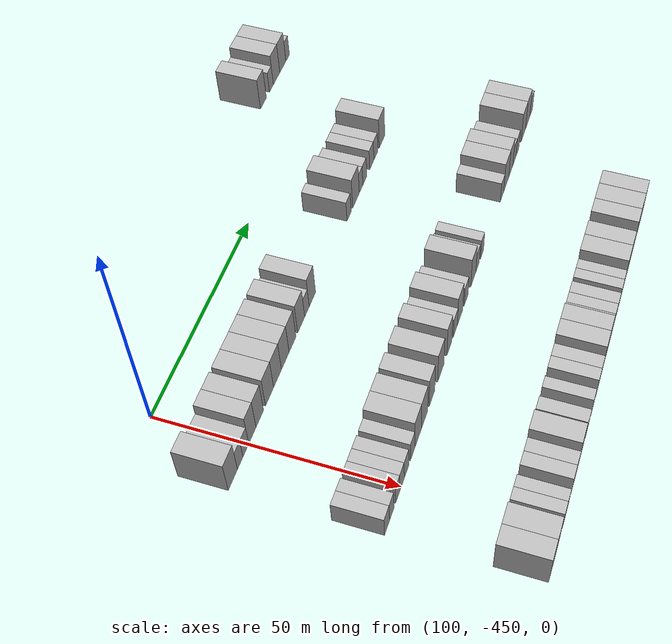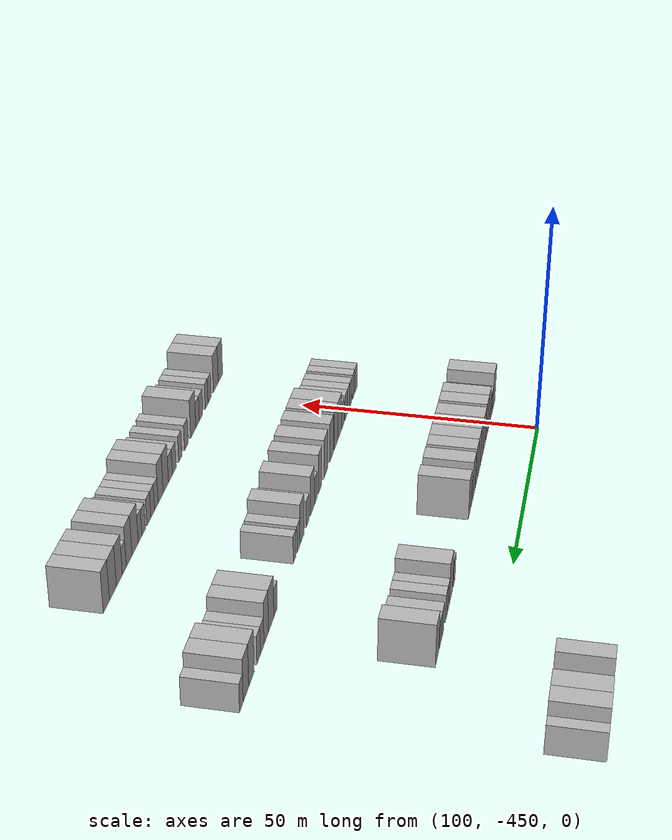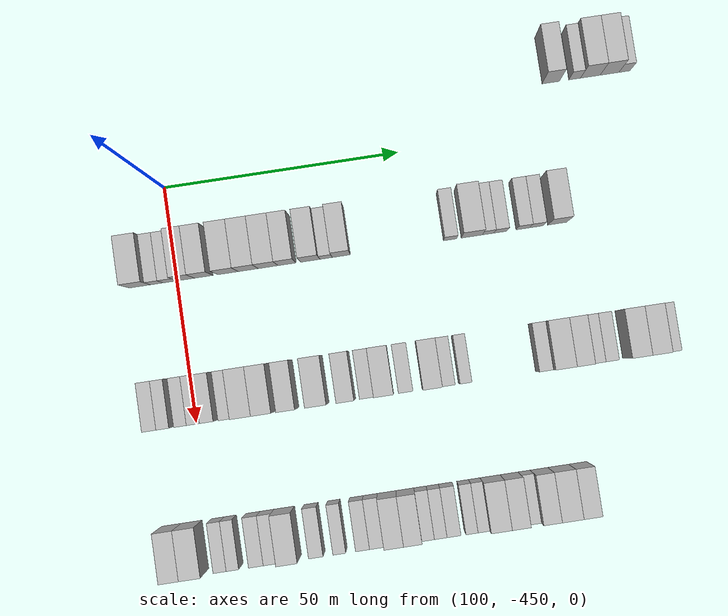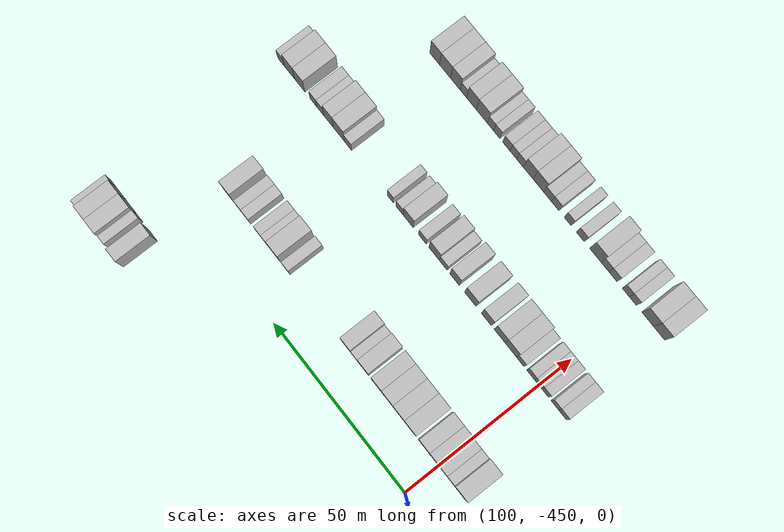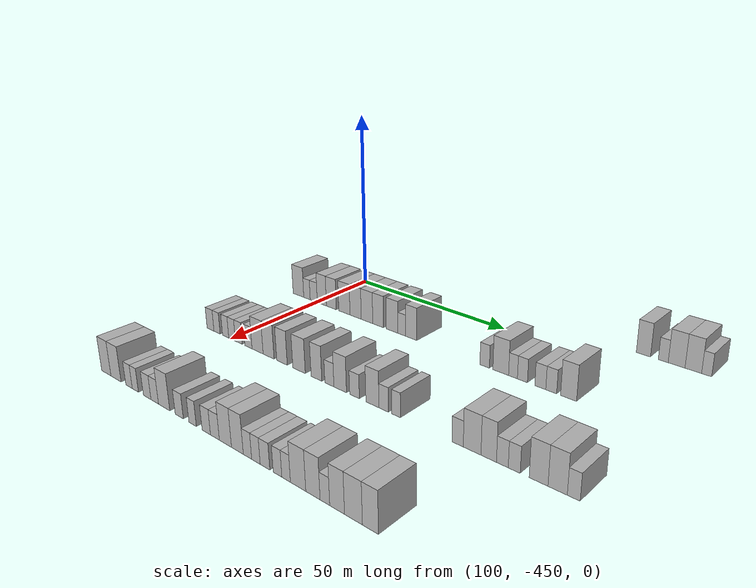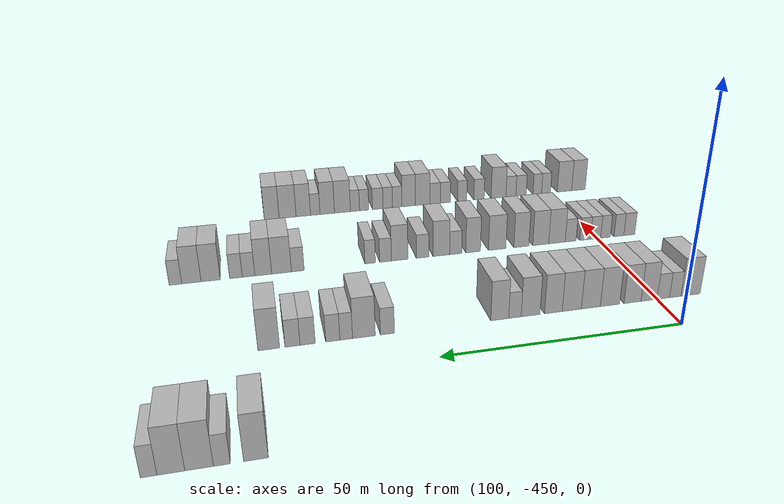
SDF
<sdf version="1.6">
 <world name="default">
  <model name="building_484">
   <static>1</static>
   <pose>85.0000 -365.6196 0 0.000000 0.000000 0.000000</pose>
   <link name="link">
    <pose>0 0 4.50 0 0 0</pose>
    <collision name="collision"><geometry><box><size>10.0000 3.7533 9.0000</size></box></geometry></collision>
    <visual name="visual">
     <cast_shadows>0</cast_shadows>
     <geometry><box><size>10.0000 3.7533 9.0000</size></box></geometry>
     <material>
      <script>
       <uri>model://HANNAS_wall/materials/scripts</uri>
       <uri>model://HANNAS_wall/materials/textures</uri>
       <name>vrc/HANNAS_wall</name>
      </script>
     </material>
    </visual>
   </link>
  </model>
  <model name="building_485">
   <static>1</static>
   <pose>85.0000 -360.4774 0 0.000000 0.000000 0.000000</pose>
   <link name="link">
    <pose>0 0 3.00 0 0 0</pose>
    <collision name="collision"><geometry><box><size>10.0000 2.5310 6.0000</size></box></geometry></collision>
    <visual name="visual">
     <cast_shadows>0</cast_shadows>
     <geometry><box><size>10.0000 2.5310 6.0000</size></box></geometry>
     <material>
      <script>
       <uri>model://HANNAS_wall/materials/scripts</uri>
       <uri>model://HANNAS_wall/materials/textures</uri>
       <name>vrc/HANNAS_wall</name>
      </script>
     </material>
    </visual>
   </link>
  </model>
  <model name="building_486">
   <static>1</static>
   <pose>85.0000 -357.1057 0 0.000000 0.000000 0.000000</pose>
   <link name="link">
    <pose>0 0 4.50 0 0 0</pose>
    <collision name="collision"><geometry><box><size>10.0000 4.2126 9.0000</size></box></geometry></collision>
    <visual name="visual">
     <cast_shadows>0</cast_shadows>
     <geometry><box><size>10.0000 4.2126 9.0000</size></box></geometry>
     <material>
      <script>
       <uri>model://HANNAS_wall/materials/scripts</uri>
       <uri>model://HANNAS_wall/materials/textures</uri>
       <name>vrc/HANNAS_wall</name>
      </script>
     </material>
    </visual>
   </link>
  </model>
  <model name="building_487">
   <static>1</static>
   <pose>85.0000 -352.9766 0 0.000000 0.000000 0.000000</pose>
   <link name="link">
    <pose>0 0 4.50 0 0 0</pose>
    <collision name="collision"><geometry><box><size>10.0000 4.0456 9.0000</size></box></geometry></collision>
    <visual name="visual">
     <cast_shadows>0</cast_shadows>
     <geometry><box><size>10.0000 4.0456 9.0000</size></box></geometry>
     <material>
      <script>
       <uri>model://HANNAS_wall/materials/scripts</uri>
       <uri>model://HANNAS_wall/materials/textures</uri>
       <name>vrc/HANNAS_wall</name>
      </script>
     </material>
    </visual>
   </link>
  </model>
  <model name="building_488">
   <static>1</static>
   <pose>85.0000 -349.7506 0 0.000000 0.000000 0.000000</pose>
   <link name="link">
    <pose>0 0 3.00 0 0 0</pose>
    <collision name="collision"><geometry><box><size>10.0000 2.4062 6.0000</size></box></geometry></collision>
    <visual name="visual">
     <cast_shadows>0</cast_shadows>
     <geometry><box><size>10.0000 2.4062 6.0000</size></box></geometry>
     <material>
      <script>
       <uri>model://HANNAS_wall/materials/scripts</uri>
       <uri>model://HANNAS_wall/materials/textures</uri>
       <name>vrc/HANNAS_wall</name>
      </script>
     </material>
    </visual>
   </link>
  </model>
  <model name="building_697">
   <static>1</static>
   <pose>115.0000 -457.7521 0 0.000000 0.000000 0.000000</pose>
   <link name="link">
    <pose>0 0 4.50 0 0 0</pose>
    <collision name="collision"><geometry><box><size>10.0000 4.4957 9.0000</size></box></geometry></collision>
    <visual name="visual">
     <cast_shadows>0</cast_shadows>
     <geometry><box><size>10.0000 4.4957 9.0000</size></box></geometry>
     <material>
      <script>
       <uri>model://HANNAS_wall/materials/scripts</uri>
       <uri>model://HANNAS_wall/materials/textures</uri>
       <name>vrc/HANNAS_wall</name>
      </script>
     </material>
    </visual>
   </link>
  </model>
  <model name="building_698">
   <static>1</static>
   <pose>115.0000 -454.1564 0 0.000000 0.000000 0.000000</pose>
   <link name="link">
    <pose>0 0 3.00 0 0 0</pose>
    <collision name="collision"><geometry><box><size>10.0000 2.6958 6.0000</size></box></geometry></collision>
    <visual name="visual">
     <cast_shadows>0</cast_shadows>
     <geometry><box><size>10.0000 2.6958 6.0000</size></box></geometry>
     <material>
      <script>
       <uri>model://HANNAS_wall/materials/scripts</uri>
       <uri>model://HANNAS_wall/materials/textures</uri>
       <name>vrc/HANNAS_wall</name>
      </script>
     </material>
    </visual>
   </link>
  </model>
  <model name="building_699">
   <static>1</static>
   <pose>115.0000 -451.3536 0 0.000000 0.000000 0.000000</pose>
   <link name="link">
    <pose>0 0 3.00 0 0 0</pose>
    <collision name="collision"><geometry><box><size>10.0000 2.9099 6.0000</size></box></geometry></collision>
    <visual name="visual">
     <cast_shadows>0</cast_shadows>
     <geometry><box><size>10.0000 2.9099 6.0000</size></box></geometry>
     <material>
      <script>
       <uri>model://HANNAS_wall/materials/scripts</uri>
       <uri>model://HANNAS_wall/materials/textures</uri>
       <name>vrc/HANNAS_wall</name>
      </script>
     </material>
    </visual>
   </link>
  </model>
  <model name="building_700">
   <static>1</static>
   <pose>115.0000 -448.0484 0 0.000000 0.000000 0.000000</pose>
   <link name="link">
    <pose>0 0 4.50 0 0 0</pose>
    <collision name="collision"><geometry><box><size>10.0000 3.7003 9.0000</size></box></geometry></collision>
    <visual name="visual">
     <cast_shadows>0</cast_shadows>
     <geometry><box><size>10.0000 3.7003 9.0000</size></box></geometry>
     <material>
      <script>
       <uri>model://HANNAS_wall/materials/scripts</uri>
       <uri>model://HANNAS_wall/materials/textures</uri>
       <name>vrc/HANNAS_wall</name>
      </script>
     </material>
    </visual>
   </link>
  </model>
  <model name="building_701">
   <static>1</static>
   <pose>115.0000 -444.2439 0 0.000000 0.000000 0.000000</pose>
   <link name="link">
    <pose>0 0 4.50 0 0 0</pose>
    <collision name="collision"><geometry><box><size>10.0000 3.9088 9.0000</size></box></geometry></collision>
    <visual name="visual">
     <cast_shadows>0</cast_shadows>
     <geometry><box><size>10.0000 3.9088 9.0000</size></box></geometry>
     <material>
      <script>
       <uri>model://HANNAS_wall/materials/scripts</uri>
       <uri>model://HANNAS_wall/materials/textures</uri>
       <name>vrc/HANNAS_wall</name>
      </script>
     </material>
    </visual>
   </link>
  </model>
  <model name="building_702">
   <static>1</static>
   <pose>115.0000 -439.1234 0 0.000000 0.000000 0.000000</pose>
   <link name="link">
    <pose>0 0 4.50 0 0 0</pose>
    <collision name="collision"><geometry><box><size>10.0000 4.3321 9.0000</size></box></geometry></collision>
    <visual name="visual">
     <cast_shadows>0</cast_shadows>
     <geometry><box><size>10.0000 4.3321 9.0000</size></box></geometry>
     <material>
      <script>
       <uri>model://HANNAS_wall/materials/scripts</uri>
       <uri>model://HANNAS_wall/materials/textures</uri>
       <name>vrc/HANNAS_wall</name>
      </script>
     </material>
    </visual>
   </link>
  </model>
  <model name="building_703">
   <static>1</static>
   <pose>115.0000 -434.8405 0 0.000000 0.000000 0.000000</pose>
   <link name="link">
    <pose>0 0 4.50 0 0 0</pose>
    <collision name="collision"><geometry><box><size>10.0000 4.2338 9.0000</size></box></geometry></collision>
    <visual name="visual">
     <cast_shadows>0</cast_shadows>
     <geometry><box><size>10.0000 4.2338 9.0000</size></box></geometry>
     <material>
      <script>
       <uri>model://HANNAS_wall/materials/scripts</uri>
       <uri>model://HANNAS_wall/materials/textures</uri>
       <name>vrc/HANNAS_wall</name>
      </script>
     </material>
    </visual>
   </link>
  </model>
  <model name="building_704">
   <static>1</static>
   <pose>115.0000 -430.6086 0 0.000000 0.000000 0.000000</pose>
   <link name="link">
    <pose>0 0 4.50 0 0 0</pose>
    <collision name="collision"><geometry><box><size>10.0000 4.2300 9.0000</size></box></geometry></collision>
    <visual name="visual">
     <cast_shadows>0</cast_shadows>
     <geometry><box><size>10.0000 4.2300 9.0000</size></box></geometry>
     <material>
      <script>
       <uri>model://HANNAS_wall/materials/scripts</uri>
       <uri>model://HANNAS_wall/materials/textures</uri>
       <name>vrc/HANNAS_wall</name>
      </script>
     </material>
    </visual>
   </link>
  </model>
  <model name="building_705">
   <static>1</static>
   <pose>115.0000 -426.5624 0 0.000000 0.000000 0.000000</pose>
   <link name="link">
    <pose>0 0 4.50 0 0 0</pose>
    <collision name="collision"><geometry><box><size>10.0000 3.8624 9.0000</size></box></geometry></collision>
    <visual name="visual">
     <cast_shadows>0</cast_shadows>
     <geometry><box><size>10.0000 3.8624 9.0000</size></box></geometry>
     <material>
      <script>
       <uri>model://HANNAS_wall/materials/scripts</uri>
       <uri>model://HANNAS_wall/materials/textures</uri>
       <name>vrc/HANNAS_wall</name>
      </script>
     </material>
    </visual>
   </link>
  </model>
  <model name="building_706">
   <static>1</static>
   <pose>115.0000 -421.6090 0 0.000000 0.000000 0.000000</pose>
   <link name="link">
    <pose>0 0 4.50 0 0 0</pose>
    <collision name="collision"><geometry><box><size>10.0000 4.0445 9.0000</size></box></geometry></collision>
    <visual name="visual">
     <cast_shadows>0</cast_shadows>
     <geometry><box><size>10.0000 4.0445 9.0000</size></box></geometry>
     <material>
      <script>
       <uri>model://HANNAS_wall/materials/scripts</uri>
       <uri>model://HANNAS_wall/materials/textures</uri>
       <name>vrc/HANNAS_wall</name>
      </script>
     </material>
    </visual>
   </link>
  </model>
  <model name="building_707">
   <static>1</static>
   <pose>115.0000 -418.2683 0 0.000000 0.000000 0.000000</pose>
   <link name="link">
    <pose>0 0 3.00 0 0 0</pose>
    <collision name="collision"><geometry><box><size>10.0000 2.6370 6.0000</size></box></geometry></collision>
    <visual name="visual">
     <cast_shadows>0</cast_shadows>
     <geometry><box><size>10.0000 2.6370 6.0000</size></box></geometry>
     <material>
      <script>
       <uri>model://HANNAS_wall/materials/scripts</uri>
       <uri>model://HANNAS_wall/materials/textures</uri>
       <name>vrc/HANNAS_wall</name>
      </script>
     </material>
    </visual>
   </link>
  </model>
  <model name="building_708">
   <static>1</static>
   <pose>115.0000 -415.0417 0 0.000000 0.000000 0.000000</pose>
   <link name="link">
    <pose>0 0 4.50 0 0 0</pose>
    <collision name="collision"><geometry><box><size>10.0000 3.8161 9.0000</size></box></geometry></collision>
    <visual name="visual">
     <cast_shadows>0</cast_shadows>
     <geometry><box><size>10.0000 3.8161 9.0000</size></box></geometry>
     <material>
      <script>
       <uri>model://HANNAS_wall/materials/scripts</uri>
       <uri>model://HANNAS_wall/materials/textures</uri>
       <name>vrc/HANNAS_wall</name>
      </script>
     </material>
    </visual>
   </link>
  </model>
  <model name="building_709">
   <static>1</static>
   <pose>115.0000 -391.9449 0 0.000000 0.000000 0.000000</pose>
   <link name="link">
    <pose>0 0 3.00 0 0 0</pose>
    <collision name="collision"><geometry><box><size>10.0000 2.7925 6.0000</size></box></geometry></collision>
    <visual name="visual">
     <cast_shadows>0</cast_shadows>
     <geometry><box><size>10.0000 2.7925 6.0000</size></box></geometry>
     <material>
      <script>
       <uri>model://HANNAS_wall/materials/scripts</uri>
       <uri>model://HANNAS_wall/materials/textures</uri>
       <name>vrc/HANNAS_wall</name>
      </script>
     </material>
    </visual>
   </link>
  </model>
  <model name="building_710">
   <static>1</static>
   <pose>115.0000 -387.3117 0 0.000000 0.000000 0.000000</pose>
   <link name="link">
    <pose>0 0 4.50 0 0 0</pose>
    <collision name="collision"><geometry><box><size>10.0000 4.4739 9.0000</size></box></geometry></collision>
    <visual name="visual">
     <cast_shadows>0</cast_shadows>
     <geometry><box><size>10.0000 4.4739 9.0000</size></box></geometry>
     <material>
      <script>
       <uri>model://HANNAS_wall/materials/scripts</uri>
       <uri>model://HANNAS_wall/materials/textures</uri>
       <name>vrc/HANNAS_wall</name>
      </script>
     </material>
    </visual>
   </link>
  </model>
  <model name="building_711">
   <static>1</static>
   <pose>115.0000 -383.8464 0 0.000000 0.000000 0.000000</pose>
   <link name="link">
    <pose>0 0 3.00 0 0 0</pose>
    <collision name="collision"><geometry><box><size>10.0000 2.4568 6.0000</size></box></geometry></collision>
    <visual name="visual">
     <cast_shadows>0</cast_shadows>
     <geometry><box><size>10.0000 2.4568 6.0000</size></box></geometry>
     <material>
      <script>
       <uri>model://HANNAS_wall/materials/scripts</uri>
       <uri>model://HANNAS_wall/materials/textures</uri>
       <name>vrc/HANNAS_wall</name>
      </script>
     </material>
    </visual>
   </link>
  </model>
  <model name="building_712">
   <static>1</static>
   <pose>115.0000 -381.2430 0 0.000000 0.000000 0.000000</pose>
   <link name="link">
    <pose>0 0 3.00 0 0 0</pose>
    <collision name="collision"><geometry><box><size>10.0000 2.7502 6.0000</size></box></geometry></collision>
    <visual name="visual">
     <cast_shadows>0</cast_shadows>
     <geometry><box><size>10.0000 2.7502 6.0000</size></box></geometry>
     <material>
      <script>
       <uri>model://HANNAS_wall/materials/scripts</uri>
       <uri>model://HANNAS_wall/materials/textures</uri>
       <name>vrc/HANNAS_wall</name>
      </script>
     </material>
    </visual>
   </link>
  </model>
  <model name="building_713">
   <static>1</static>
   <pose>115.0000 -376.4138 0 0.000000 0.000000 0.000000</pose>
   <link name="link">
    <pose>0 0 3.00 0 0 0</pose>
    <collision name="collision"><geometry><box><size>10.0000 2.9082 6.0000</size></box></geometry></collision>
    <visual name="visual">
     <cast_shadows>0</cast_shadows>
     <geometry><box><size>10.0000 2.9082 6.0000</size></box></geometry>
     <material>
      <script>
       <uri>model://HANNAS_wall/materials/scripts</uri>
       <uri>model://HANNAS_wall/materials/textures</uri>
       <name>vrc/HANNAS_wall</name>
      </script>
     </material>
    </visual>
   </link>
  </model>
  <model name="building_714">
   <static>1</static>
   <pose>115.0000 -373.5406 0 0.000000 0.000000 0.000000</pose>
   <link name="link">
    <pose>0 0 3.00 0 0 0</pose>
    <collision name="collision"><geometry><box><size>10.0000 2.8382 6.0000</size></box></geometry></collision>
    <visual name="visual">
     <cast_shadows>0</cast_shadows>
     <geometry><box><size>10.0000 2.8382 6.0000</size></box></geometry>
     <material>
      <script>
       <uri>model://HANNAS_wall/materials/scripts</uri>
       <uri>model://HANNAS_wall/materials/textures</uri>
       <name>vrc/HANNAS_wall</name>
      </script>
     </material>
    </visual>
   </link>
  </model>
  <model name="building_715">
   <static>1</static>
   <pose>115.0000 -369.0897 0 0.000000 0.000000 0.000000</pose>
   <link name="link">
    <pose>0 0 4.50 0 0 0</pose>
    <collision name="collision"><geometry><box><size>10.0000 4.0637 9.0000</size></box></geometry></collision>
    <visual name="visual">
     <cast_shadows>0</cast_shadows>
     <geometry><box><size>10.0000 4.0637 9.0000</size></box></geometry>
     <material>
      <script>
       <uri>model://HANNAS_wall/materials/scripts</uri>
       <uri>model://HANNAS_wall/materials/textures</uri>
       <name>vrc/HANNAS_wall</name>
      </script>
     </material>
    </visual>
   </link>
  </model>
  <model name="building_925">
   <static>1</static>
   <pose>145.0000 -458.5316 0 0.000000 0.000000 0.000000</pose>
   <link name="link">
    <pose>0 0 3.00 0 0 0</pose>
    <collision name="collision"><geometry><box><size>10.0000 2.9367 6.0000</size></box></geometry></collision>
    <visual name="visual">
     <cast_shadows>0</cast_shadows>
     <geometry><box><size>10.0000 2.9367 6.0000</size></box></geometry>
     <material>
      <script>
       <uri>model://HANNAS_wall/materials/scripts</uri>
       <uri>model://HANNAS_wall/materials/textures</uri>
       <name>vrc/HANNAS_wall</name>
      </script>
     </material>
    </visual>
   </link>
  </model>
  <model name="building_926">
   <static>1</static>
   <pose>145.0000 -455.7524 0 0.000000 0.000000 0.000000</pose>
   <link name="link">
    <pose>0 0 3.00 0 0 0</pose>
    <collision name="collision"><geometry><box><size>10.0000 2.6218 6.0000</size></box></geometry></collision>
    <visual name="visual">
     <cast_shadows>0</cast_shadows>
     <geometry><box><size>10.0000 2.6218 6.0000</size></box></geometry>
     <material>
      <script>
       <uri>model://HANNAS_wall/materials/scripts</uri>
       <uri>model://HANNAS_wall/materials/textures</uri>
       <name>vrc/HANNAS_wall</name>
      </script>
     </material>
    </visual>
   </link>
  </model>
  <model name="building_927">
   <static>1</static>
   <pose>145.0000 -452.1539 0 0.000000 0.000000 0.000000</pose>
   <link name="link">
    <pose>0 0 3.00 0 0 0</pose>
    <collision name="collision"><geometry><box><size>10.0000 2.5752 6.0000</size></box></geometry></collision>
    <visual name="visual">
     <cast_shadows>0</cast_shadows>
     <geometry><box><size>10.0000 2.5752 6.0000</size></box></geometry>
     <material>
      <script>
       <uri>model://HANNAS_wall/materials/scripts</uri>
       <uri>model://HANNAS_wall/materials/textures</uri>
       <name>vrc/HANNAS_wall</name>
      </script>
     </material>
    </visual>
   </link>
  </model>
  <model name="building_928">
   <static>1</static>
   <pose>145.0000 -449.5214 0 0.000000 0.000000 0.000000</pose>
   <link name="link">
    <pose>0 0 3.00 0 0 0</pose>
    <collision name="collision"><geometry><box><size>10.0000 2.6898 6.0000</size></box></geometry></collision>
    <visual name="visual">
     <cast_shadows>0</cast_shadows>
     <geometry><box><size>10.0000 2.6898 6.0000</size></box></geometry>
     <material>
      <script>
       <uri>model://HANNAS_wall/materials/scripts</uri>
       <uri>model://HANNAS_wall/materials/textures</uri>
       <name>vrc/HANNAS_wall</name>
      </script>
     </material>
    </visual>
   </link>
  </model>
  <model name="building_929">
   <static>1</static>
   <pose>145.0000 -446.7865 0 0.000000 0.000000 0.000000</pose>
   <link name="link">
    <pose>0 0 3.00 0 0 0</pose>
    <collision name="collision"><geometry><box><size>10.0000 2.7801 6.0000</size></box></geometry></collision>
    <visual name="visual">
     <cast_shadows>0</cast_shadows>
     <geometry><box><size>10.0000 2.7801 6.0000</size></box></geometry>
     <material>
      <script>
       <uri>model://HANNAS_wall/materials/scripts</uri>
       <uri>model://HANNAS_wall/materials/textures</uri>
       <name>vrc/HANNAS_wall</name>
      </script>
     </material>
    </visual>
   </link>
  </model>
  <model name="building_930">
   <static>1</static>
   <pose>145.0000 -442.9842 0 0.000000 0.000000 0.000000</pose>
   <link name="link">
    <pose>0 0 3.00 0 0 0</pose>
    <collision name="collision"><geometry><box><size>10.0000 2.8246 6.0000</size></box></geometry></collision>
    <visual name="visual">
     <cast_shadows>0</cast_shadows>
     <geometry><box><size>10.0000 2.8246 6.0000</size></box></geometry>
     <material>
      <script>
       <uri>model://HANNAS_wall/materials/scripts</uri>
       <uri>model://HANNAS_wall/materials/textures</uri>
       <name>vrc/HANNAS_wall</name>
      </script>
     </material>
    </visual>
   </link>
  </model>
  <model name="building_931">
   <static>1</static>
   <pose>145.0000 -439.4419 0 0.000000 0.000000 0.000000</pose>
   <link name="link">
    <pose>0 0 4.50 0 0 0</pose>
    <collision name="collision"><geometry><box><size>10.0000 4.2600 9.0000</size></box></geometry></collision>
    <visual name="visual">
     <cast_shadows>0</cast_shadows>
     <geometry><box><size>10.0000 4.2600 9.0000</size></box></geometry>
     <material>
      <script>
       <uri>model://HANNAS_wall/materials/scripts</uri>
       <uri>model://HANNAS_wall/materials/textures</uri>
       <name>vrc/HANNAS_wall</name>
      </script>
     </material>
    </visual>
   </link>
  </model>
  <model name="building_932">
   <static>1</static>
   <pose>145.0000 -435.2626 0 0.000000 0.000000 0.000000</pose>
   <link name="link">
    <pose>0 0 4.50 0 0 0</pose>
    <collision name="collision"><geometry><box><size>10.0000 4.0986 9.0000</size></box></geometry></collision>
    <visual name="visual">
     <cast_shadows>0</cast_shadows>
     <geometry><box><size>10.0000 4.0986 9.0000</size></box></geometry>
     <material>
      <script>
       <uri>model://HANNAS_wall/materials/scripts</uri>
       <uri>model://HANNAS_wall/materials/textures</uri>
       <name>vrc/HANNAS_wall</name>
      </script>
     </material>
    </visual>
   </link>
  </model>
  <model name="building_933">
   <static>1</static>
   <pose>145.0000 -430.3144 0 0.000000 0.000000 0.000000</pose>
   <link name="link">
    <pose>0 0 4.50 0 0 0</pose>
    <collision name="collision"><geometry><box><size>10.0000 3.7978 9.0000</size></box></geometry></collision>
    <visual name="visual">
     <cast_shadows>0</cast_shadows>
     <geometry><box><size>10.0000 3.7978 9.0000</size></box></geometry>
     <material>
      <script>
       <uri>model://HANNAS_wall/materials/scripts</uri>
       <uri>model://HANNAS_wall/materials/textures</uri>
       <name>vrc/HANNAS_wall</name>
      </script>
     </material>
    </visual>
   </link>
  </model>
  <model name="building_934">
   <static>1</static>
   <pose>145.0000 -424.2437 0 0.000000 0.000000 0.000000</pose>
   <link name="link">
    <pose>0 0 4.50 0 0 0</pose>
    <collision name="collision"><geometry><box><size>10.0000 4.3436 9.0000</size></box></geometry></collision>
    <visual name="visual">
     <cast_shadows>0</cast_shadows>
     <geometry><box><size>10.0000 4.3436 9.0000</size></box></geometry>
     <material>
      <script>
       <uri>model://HANNAS_wall/materials/scripts</uri>
       <uri>model://HANNAS_wall/materials/textures</uri>
       <name>vrc/HANNAS_wall</name>
      </script>
     </material>
    </visual>
   </link>
  </model>
  <model name="building_935">
   <static>1</static>
   <pose>145.0000 -418.2673 0 0.000000 0.000000 0.000000</pose>
   <link name="link">
    <pose>0 0 4.50 0 0 0</pose>
    <collision name="collision"><geometry><box><size>10.0000 3.6092 9.0000</size></box></geometry></collision>
    <visual name="visual">
     <cast_shadows>0</cast_shadows>
     <geometry><box><size>10.0000 3.6092 9.0000</size></box></geometry>
     <material>
      <script>
       <uri>model://HANNAS_wall/materials/scripts</uri>
       <uri>model://HANNAS_wall/materials/textures</uri>
       <name>vrc/HANNAS_wall</name>
      </script>
     </material>
    </visual>
   </link>
  </model>
  <model name="building_936">
   <static>1</static>
   <pose>145.0000 -413.9825 0 0.000000 0.000000 0.000000</pose>
   <link name="link">
    <pose>0 0 3.00 0 0 0</pose>
    <collision name="collision"><geometry><box><size>10.0000 2.9604 6.0000</size></box></geometry></collision>
    <visual name="visual">
     <cast_shadows>0</cast_shadows>
     <geometry><box><size>10.0000 2.9604 6.0000</size></box></geometry>
     <material>
      <script>
       <uri>model://HANNAS_wall/materials/scripts</uri>
       <uri>model://HANNAS_wall/materials/textures</uri>
       <name>vrc/HANNAS_wall</name>
      </script>
     </material>
    </visual>
   </link>
  </model>
  <model name="building_937">
   <static>1</static>
   <pose>145.0000 -410.4866 0 0.000000 0.000000 0.000000</pose>
   <link name="link">
    <pose>0 0 4.50 0 0 0</pose>
    <collision name="collision"><geometry><box><size>10.0000 4.0313 9.0000</size></box></geometry></collision>
    <visual name="visual">
     <cast_shadows>0</cast_shadows>
     <geometry><box><size>10.0000 4.0313 9.0000</size></box></geometry>
     <material>
      <script>
       <uri>model://HANNAS_wall/materials/scripts</uri>
       <uri>model://HANNAS_wall/materials/textures</uri>
       <name>vrc/HANNAS_wall</name>
      </script>
     </material>
    </visual>
   </link>
  </model>
  <model name="building_938">
   <static>1</static>
   <pose>145.0000 -405.9719 0 0.000000 0.000000 0.000000</pose>
   <link name="link">
    <pose>0 0 3.00 0 0 0</pose>
    <collision name="collision"><geometry><box><size>10.0000 2.9983 6.0000</size></box></geometry></collision>
    <visual name="visual">
     <cast_shadows>0</cast_shadows>
     <geometry><box><size>10.0000 2.9983 6.0000</size></box></geometry>
     <material>
      <script>
       <uri>model://HANNAS_wall/materials/scripts</uri>
       <uri>model://HANNAS_wall/materials/textures</uri>
       <name>vrc/HANNAS_wall</name>
      </script>
     </material>
    </visual>
   </link>
  </model>
  <model name="building_939">
   <static>1</static>
   <pose>145.0000 -400.5161 0 0.000000 0.000000 0.000000</pose>
   <link name="link">
    <pose>0 0 4.50 0 0 0</pose>
    <collision name="collision"><geometry><box><size>10.0000 3.9133 9.0000</size></box></geometry></collision>
    <visual name="visual">
     <cast_shadows>0</cast_shadows>
     <geometry><box><size>10.0000 3.9133 9.0000</size></box></geometry>
     <material>
      <script>
       <uri>model://HANNAS_wall/materials/scripts</uri>
       <uri>model://HANNAS_wall/materials/textures</uri>
       <name>vrc/HANNAS_wall</name>
      </script>
     </material>
    </visual>
   </link>
  </model>
  <model name="building_940">
   <static>1</static>
   <pose>145.0000 -397.1795 0 0.000000 0.000000 0.000000</pose>
   <link name="link">
    <pose>0 0 3.00 0 0 0</pose>
    <collision name="collision"><geometry><box><size>10.0000 2.7598 6.0000</size></box></geometry></collision>
    <visual name="visual">
     <cast_shadows>0</cast_shadows>
     <geometry><box><size>10.0000 2.7598 6.0000</size></box></geometry>
     <material>
      <script>
       <uri>model://HANNAS_wall/materials/scripts</uri>
       <uri>model://HANNAS_wall/materials/textures</uri>
       <name>vrc/HANNAS_wall</name>
      </script>
     </material>
    </visual>
   </link>
  </model>
  <model name="building_941">
   <static>1</static>
   <pose>145.0000 -393.5802 0 0.000000 0.000000 0.000000</pose>
   <link name="link">
    <pose>0 0 3.00 0 0 0</pose>
    <collision name="collision"><geometry><box><size>10.0000 2.4389 6.0000</size></box></geometry></collision>
    <visual name="visual">
     <cast_shadows>0</cast_shadows>
     <geometry><box><size>10.0000 2.4389 6.0000</size></box></geometry>
     <material>
      <script>
       <uri>model://HANNAS_wall/materials/scripts</uri>
       <uri>model://HANNAS_wall/materials/textures</uri>
       <name>vrc/HANNAS_wall</name>
      </script>
     </material>
    </visual>
   </link>
  </model>
  <model name="building_942">
   <static>1</static>
   <pose>145.0000 -377.0455 0 0.000000 0.000000 0.000000</pose>
   <link name="link">
    <pose>0 0 3.00 0 0 0</pose>
    <collision name="collision"><geometry><box><size>10.0000 2.8768 6.0000</size></box></geometry></collision>
    <visual name="visual">
     <cast_shadows>0</cast_shadows>
     <geometry><box><size>10.0000 2.8768 6.0000</size></box></geometry>
     <material>
      <script>
       <uri>model://HANNAS_wall/materials/scripts</uri>
       <uri>model://HANNAS_wall/materials/textures</uri>
       <name>vrc/HANNAS_wall</name>
      </script>
     </material>
    </visual>
   </link>
  </model>
  <model name="building_943">
   <static>1</static>
   <pose>145.0000 -373.4247 0 0.000000 0.000000 0.000000</pose>
   <link name="link">
    <pose>0 0 4.50 0 0 0</pose>
    <collision name="collision"><geometry><box><size>10.0000 4.3649 9.0000</size></box></geometry></collision>
    <visual name="visual">
     <cast_shadows>0</cast_shadows>
     <geometry><box><size>10.0000 4.3649 9.0000</size></box></geometry>
     <material>
      <script>
       <uri>model://HANNAS_wall/materials/scripts</uri>
       <uri>model://HANNAS_wall/materials/textures</uri>
       <name>vrc/HANNAS_wall</name>
      </script>
     </material>
    </visual>
   </link>
  </model>
  <model name="building_944">
   <static>1</static>
   <pose>145.0000 -369.3925 0 0.000000 0.000000 0.000000</pose>
   <link name="link">
    <pose>0 0 4.50 0 0 0</pose>
    <collision name="collision"><geometry><box><size>10.0000 3.6994 9.0000</size></box></geometry></collision>
    <visual name="visual">
     <cast_shadows>0</cast_shadows>
     <geometry><box><size>10.0000 3.6994 9.0000</size></box></geometry>
     <material>
      <script>
       <uri>model://HANNAS_wall/materials/scripts</uri>
       <uri>model://HANNAS_wall/materials/textures</uri>
       <name>vrc/HANNAS_wall</name>
      </script>
     </material>
    </visual>
   </link>
  </model>
  <model name="building_945">
   <static>1</static>
   <pose>145.0000 -366.1663 0 0.000000 0.000000 0.000000</pose>
   <link name="link">
    <pose>0 0 3.00 0 0 0</pose>
    <collision name="collision"><geometry><box><size>10.0000 2.7530 6.0000</size></box></geometry></collision>
    <visual name="visual">
     <cast_shadows>0</cast_shadows>
     <geometry><box><size>10.0000 2.7530 6.0000</size></box></geometry>
     <material>
      <script>
       <uri>model://HANNAS_wall/materials/scripts</uri>
       <uri>model://HANNAS_wall/materials/textures</uri>
       <name>vrc/HANNAS_wall</name>
      </script>
     </material>
    </visual>
   </link>
  </model>
  <model name="building_946">
   <static>1</static>
   <pose>145.0000 -363.4159 0 0.000000 0.000000 0.000000</pose>
   <link name="link">
    <pose>0 0 3.00 0 0 0</pose>
    <collision name="collision"><geometry><box><size>10.0000 2.7479 6.0000</size></box></geometry></collision>
    <visual name="visual">
     <cast_shadows>0</cast_shadows>
     <geometry><box><size>10.0000 2.7479 6.0000</size></box></geometry>
     <material>
      <script>
       <uri>model://HANNAS_wall/materials/scripts</uri>
       <uri>model://HANNAS_wall/materials/textures</uri>
       <name>vrc/HANNAS_wall</name>
      </script>
     </material>
    </visual>
   </link>
  </model>
  <model name="building_947">
   <static>1</static>
   <pose>145.0000 -357.9784 0 0.000000 0.000000 0.000000</pose>
   <link name="link">
    <pose>0 0 4.50 0 0 0</pose>
    <collision name="collision"><geometry><box><size>10.0000 4.1271 9.0000</size></box></geometry></collision>
    <visual name="visual">
     <cast_shadows>0</cast_shadows>
     <geometry><box><size>10.0000 4.1271 9.0000</size></box></geometry>
     <material>
      <script>
       <uri>model://HANNAS_wall/materials/scripts</uri>
       <uri>model://HANNAS_wall/materials/textures</uri>
       <name>vrc/HANNAS_wall</name>
      </script>
     </material>
    </visual>
   </link>
  </model>
  <model name="building_948">
   <static>1</static>
   <pose>145.0000 -353.8708 0 0.000000 0.000000 0.000000</pose>
   <link name="link">
    <pose>0 0 4.50 0 0 0</pose>
    <collision name="collision"><geometry><box><size>10.0000 4.0880 9.0000</size></box></geometry></collision>
    <visual name="visual">
     <cast_shadows>0</cast_shadows>
     <geometry><box><size>10.0000 4.0880 9.0000</size></box></geometry>
     <material>
      <script>
       <uri>model://HANNAS_wall/materials/scripts</uri>
       <uri>model://HANNAS_wall/materials/textures</uri>
       <name>vrc/HANNAS_wall</name>
      </script>
     </material>
    </visual>
   </link>
  </model>
  <model name="building_949">
   <static>1</static>
   <pose>145.0000 -350.4945 0 0.000000 0.000000 0.000000</pose>
   <link name="link">
    <pose>0 0 3.00 0 0 0</pose>
    <collision name="collision"><geometry><box><size>10.0000 2.6646 6.0000</size></box></geometry></collision>
    <visual name="visual">
     <cast_shadows>0</cast_shadows>
     <geometry><box><size>10.0000 2.6646 6.0000</size></box></geometry>
     <material>
      <script>
       <uri>model://HANNAS_wall/materials/scripts</uri>
       <uri>model://HANNAS_wall/materials/textures</uri>
       <name>vrc/HANNAS_wall</name>
      </script>
     </material>
    </visual>
   </link>
  </model>
  <model name="building_1157">
   <static>1</static>
   <pose>175.0000 -457.9692 0 0.000000 0.000000 0.000000</pose>
   <link name="link">
    <pose>0 0 4.50 0 0 0</pose>
    <collision name="collision"><geometry><box><size>10.0000 4.0616 9.0000</size></box></geometry></collision>
    <visual name="visual">
     <cast_shadows>0</cast_shadows>
     <geometry><box><size>10.0000 4.0616 9.0000</size></box></geometry>
     <material>
      <script>
       <uri>model://HANNAS_wall/materials/scripts</uri>
       <uri>model://HANNAS_wall/materials/textures</uri>
       <name>vrc/HANNAS_wall</name>
      </script>
     </material>
    </visual>
   </link>
  </model>
  <model name="building_1158">
   <static>1</static>
   <pose>175.0000 -453.7644 0 0.000000 0.000000 0.000000</pose>
   <link name="link">
    <pose>0 0 4.50 0 0 0</pose>
    <collision name="collision"><geometry><box><size>10.0000 4.3481 9.0000</size></box></geometry></collision>
    <visual name="visual">
     <cast_shadows>0</cast_shadows>
     <geometry><box><size>10.0000 4.3481 9.0000</size></box></geometry>
     <material>
      <script>
       <uri>model://HANNAS_wall/materials/scripts</uri>
       <uri>model://HANNAS_wall/materials/textures</uri>
       <name>vrc/HANNAS_wall</name>
      </script>
     </material>
    </visual>
   </link>
  </model>
  <model name="building_1159">
   <static>1</static>
   <pose>175.0000 -448.2645 0 0.000000 0.000000 0.000000</pose>
   <link name="link">
    <pose>0 0 3.00 0 0 0</pose>
    <collision name="collision"><geometry><box><size>10.0000 2.6517 6.0000</size></box></geometry></collision>
    <visual name="visual">
     <cast_shadows>0</cast_shadows>
     <geometry><box><size>10.0000 2.6517 6.0000</size></box></geometry>
     <material>
      <script>
       <uri>model://HANNAS_wall/materials/scripts</uri>
       <uri>model://HANNAS_wall/materials/textures</uri>
       <name>vrc/HANNAS_wall</name>
      </script>
     </material>
    </visual>
   </link>
  </model>
  <model name="building_1160">
   <static>1</static>
   <pose>175.0000 -445.6748 0 0.000000 0.000000 0.000000</pose>
   <link name="link">
    <pose>0 0 3.00 0 0 0</pose>
    <collision name="collision"><geometry><box><size>10.0000 2.5278 6.0000</size></box></geometry></collision>
    <visual name="visual">
     <cast_shadows>0</cast_shadows>
     <geometry><box><size>10.0000 2.5278 6.0000</size></box></geometry>
     <material>
      <script>
       <uri>model://HANNAS_wall/materials/scripts</uri>
       <uri>model://HANNAS_wall/materials/textures</uri>
       <name>vrc/HANNAS_wall</name>
      </script>
     </material>
    </visual>
   </link>
  </model>
  <model name="building_1161">
   <static>1</static>
   <pose>175.0000 -440.9199 0 0.000000 0.000000 0.000000</pose>
   <link name="link">
    <pose>0 0 3.00 0 0 0</pose>
    <collision name="collision"><geometry><box><size>10.0000 2.9819 6.0000</size></box></geometry></collision>
    <visual name="visual">
     <cast_shadows>0</cast_shadows>
     <geometry><box><size>10.0000 2.9819 6.0000</size></box></geometry>
     <material>
      <script>
       <uri>model://HANNAS_wall/materials/scripts</uri>
       <uri>model://HANNAS_wall/materials/textures</uri>
       <name>vrc/HANNAS_wall</name>
      </script>
     </material>
    </visual>
   </link>
  </model>
  <model name="building_1162">
   <static>1</static>
   <pose>175.0000 -437.9756 0 0.000000 0.000000 0.000000</pose>
   <link name="link">
    <pose>0 0 3.00 0 0 0</pose>
    <collision name="collision"><geometry><box><size>10.0000 2.9067 6.0000</size></box></geometry></collision>
    <visual name="visual">
     <cast_shadows>0</cast_shadows>
     <geometry><box><size>10.0000 2.9067 6.0000</size></box></geometry>
     <material>
      <script>
       <uri>model://HANNAS_wall/materials/scripts</uri>
       <uri>model://HANNAS_wall/materials/textures</uri>
       <name>vrc/HANNAS_wall</name>
      </script>
     </material>
    </visual>
   </link>
  </model>
  <model name="building_1163">
   <static>1</static>
   <pose>175.0000 -434.3855 0 0.000000 0.000000 0.000000</pose>
   <link name="link">
    <pose>0 0 4.50 0 0 0</pose>
    <collision name="collision"><geometry><box><size>10.0000 4.2735 9.0000</size></box></geometry></collision>
    <visual name="visual">
     <cast_shadows>0</cast_shadows>
     <geometry><box><size>10.0000 4.2735 9.0000</size></box></geometry>
     <material>
      <script>
       <uri>model://HANNAS_wall/materials/scripts</uri>
       <uri>model://HANNAS_wall/materials/textures</uri>
       <name>vrc/HANNAS_wall</name>
      </script>
     </material>
    </visual>
   </link>
  </model>
  <model name="building_1164">
   <static>1</static>
   <pose>175.0000 -428.7736 0 0.000000 0.000000 0.000000</pose>
   <link name="link">
    <pose>0 0 3.00 0 0 0</pose>
    <collision name="collision"><geometry><box><size>10.0000 2.9503 6.0000</size></box></geometry></collision>
    <visual name="visual">
     <cast_shadows>0</cast_shadows>
     <geometry><box><size>10.0000 2.9503 6.0000</size></box></geometry>
     <material>
      <script>
       <uri>model://HANNAS_wall/materials/scripts</uri>
       <uri>model://HANNAS_wall/materials/textures</uri>
       <name>vrc/HANNAS_wall</name>
      </script>
     </material>
    </visual>
   </link>
  </model>
  <model name="building_1165">
   <static>1</static>
   <pose>175.0000 -423.9959 0 0.000000 0.000000 0.000000</pose>
   <link name="link">
    <pose>0 0 3.00 0 0 0</pose>
    <collision name="collision"><geometry><box><size>10.0000 2.6050 6.0000</size></box></geometry></collision>
    <visual name="visual">
     <cast_shadows>0</cast_shadows>
     <geometry><box><size>10.0000 2.6050 6.0000</size></box></geometry>
     <material>
      <script>
       <uri>model://HANNAS_wall/materials/scripts</uri>
       <uri>model://HANNAS_wall/materials/textures</uri>
       <name>vrc/HANNAS_wall</name>
      </script>
     </material>
    </visual>
   </link>
  </model>
  <model name="building_1166">
   <static>1</static>
   <pose>175.0000 -419.2782 0 0.000000 0.000000 0.000000</pose>
   <link name="link">
    <pose>0 0 3.00 0 0 0</pose>
    <collision name="collision"><geometry><box><size>10.0000 2.8304 6.0000</size></box></geometry></collision>
    <visual name="visual">
     <cast_shadows>0</cast_shadows>
     <geometry><box><size>10.0000 2.8304 6.0000</size></box></geometry>
     <material>
      <script>
       <uri>model://HANNAS_wall/materials/scripts</uri>
       <uri>model://HANNAS_wall/materials/textures</uri>
       <name>vrc/HANNAS_wall</name>
      </script>
     </material>
    </visual>
   </link>
  </model>
  <model name="building_1167">
   <static>1</static>
   <pose>175.0000 -416.3840 0 0.000000 0.000000 0.000000</pose>
   <link name="link">
    <pose>0 0 3.00 0 0 0</pose>
    <collision name="collision"><geometry><box><size>10.0000 2.9582 6.0000</size></box></geometry></collision>
    <visual name="visual">
     <cast_shadows>0</cast_shadows>
     <geometry><box><size>10.0000 2.9582 6.0000</size></box></geometry>
     <material>
      <script>
       <uri>model://HANNAS_wall/materials/scripts</uri>
       <uri>model://HANNAS_wall/materials/textures</uri>
       <name>vrc/HANNAS_wall</name>
      </script>
     </material>
    </visual>
   </link>
  </model>
  <model name="building_1168">
   <static>1</static>
   <pose>175.0000 -412.9378 0 0.000000 0.000000 0.000000</pose>
   <link name="link">
    <pose>0 0 4.50 0 0 0</pose>
    <collision name="collision"><geometry><box><size>10.0000 3.9341 9.0000</size></box></geometry></collision>
    <visual name="visual">
     <cast_shadows>0</cast_shadows>
     <geometry><box><size>10.0000 3.9341 9.0000</size></box></geometry>
     <material>
      <script>
       <uri>model://HANNAS_wall/materials/scripts</uri>
       <uri>model://HANNAS_wall/materials/textures</uri>
       <name>vrc/HANNAS_wall</name>
      </script>
     </material>
    </visual>
   </link>
  </model>
  <model name="building_1169">
   <static>1</static>
   <pose>175.0000 -409.1067 0 0.000000 0.000000 0.000000</pose>
   <link name="link">
    <pose>0 0 4.50 0 0 0</pose>
    <collision name="collision"><geometry><box><size>10.0000 3.7283 9.0000</size></box></geometry></collision>
    <visual name="visual">
     <cast_shadows>0</cast_shadows>
     <geometry><box><size>10.0000 3.7283 9.0000</size></box></geometry>
     <material>
      <script>
       <uri>model://HANNAS_wall/materials/scripts</uri>
       <uri>model://HANNAS_wall/materials/textures</uri>
       <name>vrc/HANNAS_wall</name>
      </script>
     </material>
    </visual>
   </link>
  </model>
  <model name="building_1170">
   <static>1</static>
   <pose>175.0000 -405.9571 0 0.000000 0.000000 0.000000</pose>
   <link name="link">
    <pose>0 0 3.00 0 0 0</pose>
    <collision name="collision"><geometry><box><size>10.0000 2.5709 6.0000</size></box></geometry></collision>
    <visual name="visual">
     <cast_shadows>0</cast_shadows>
     <geometry><box><size>10.0000 2.5709 6.0000</size></box></geometry>
     <material>
      <script>
       <uri>model://HANNAS_wall/materials/scripts</uri>
       <uri>model://HANNAS_wall/materials/textures</uri>
       <name>vrc/HANNAS_wall</name>
      </script>
     </material>
    </visual>
   </link>
  </model>
  <model name="building_1171">
   <static>1</static>
   <pose>175.0000 -403.3875 0 0.000000 0.000000 0.000000</pose>
   <link name="link">
    <pose>0 0 3.00 0 0 0</pose>
    <collision name="collision"><geometry><box><size>10.0000 2.5683 6.0000</size></box></geometry></collision>
    <visual name="visual">
     <cast_shadows>0</cast_shadows>
     <geometry><box><size>10.0000 2.5683 6.0000</size></box></geometry>
     <material>
      <script>
       <uri>model://HANNAS_wall/materials/scripts</uri>
       <uri>model://HANNAS_wall/materials/textures</uri>
       <name>vrc/HANNAS_wall</name>
      </script>
     </material>
    </visual>
   </link>
  </model>
  <model name="building_1172">
   <static>1</static>
   <pose>175.0000 -400.6846 0 0.000000 0.000000 0.000000</pose>
   <link name="link">
    <pose>0 0 3.00 0 0 0</pose>
    <collision name="collision"><geometry><box><size>10.0000 2.8376 6.0000</size></box></geometry></collision>
    <visual name="visual">
     <cast_shadows>0</cast_shadows>
     <geometry><box><size>10.0000 2.8376 6.0000</size></box></geometry>
     <material>
      <script>
       <uri>model://HANNAS_wall/materials/scripts</uri>
       <uri>model://HANNAS_wall/materials/textures</uri>
       <name>vrc/HANNAS_wall</name>
      </script>
     </material>
    </visual>
   </link>
  </model>
  <model name="building_1173">
   <static>1</static>
   <pose>175.0000 -397.0293 0 0.000000 0.000000 0.000000</pose>
   <link name="link">
    <pose>0 0 3.00 0 0 0</pose>
    <collision name="collision"><geometry><box><size>10.0000 2.4731 6.0000</size></box></geometry></collision>
    <visual name="visual">
     <cast_shadows>0</cast_shadows>
     <geometry><box><size>10.0000 2.4731 6.0000</size></box></geometry>
     <material>
      <script>
       <uri>model://HANNAS_wall/materials/scripts</uri>
       <uri>model://HANNAS_wall/materials/textures</uri>
       <name>vrc/HANNAS_wall</name>
      </script>
     </material>
    </visual>
   </link>
  </model>
  <model name="building_1174">
   <static>1</static>
   <pose>175.0000 -394.5833 0 0.000000 0.000000 0.000000</pose>
   <link name="link">
    <pose>0 0 3.00 0 0 0</pose>
    <collision name="collision"><geometry><box><size>10.0000 2.4189 6.0000</size></box></geometry></collision>
    <visual name="visual">
     <cast_shadows>0</cast_shadows>
     <geometry><box><size>10.0000 2.4189 6.0000</size></box></geometry>
     <material>
      <script>
       <uri>model://HANNAS_wall/materials/scripts</uri>
       <uri>model://HANNAS_wall/materials/textures</uri>
       <name>vrc/HANNAS_wall</name>
      </script>
     </material>
    </visual>
   </link>
  </model>
  <model name="building_1175">
   <static>1</static>
   <pose>175.0000 -391.2643 0 0.000000 0.000000 0.000000</pose>
   <link name="link">
    <pose>0 0 4.50 0 0 0</pose>
    <collision name="collision"><geometry><box><size>10.0000 4.2192 9.0000</size></box></geometry></collision>
    <visual name="visual">
     <cast_shadows>0</cast_shadows>
     <geometry><box><size>10.0000 4.2192 9.0000</size></box></geometry>
     <material>
      <script>
       <uri>model://HANNAS_wall/materials/scripts</uri>
       <uri>model://HANNAS_wall/materials/textures</uri>
       <name>vrc/HANNAS_wall</name>
      </script>
     </material>
    </visual>
   </link>
  </model>
  <model name="building_1176">
   <static>1</static>
   <pose>175.0000 -387.2551 0 0.000000 0.000000 0.000000</pose>
   <link name="link">
    <pose>0 0 4.50 0 0 0</pose>
    <collision name="collision"><geometry><box><size>10.0000 3.7991 9.0000</size></box></geometry></collision>
    <visual name="visual">
     <cast_shadows>0</cast_shadows>
     <geometry><box><size>10.0000 3.7991 9.0000</size></box></geometry>
     <material>
      <script>
       <uri>model://HANNAS_wall/materials/scripts</uri>
       <uri>model://HANNAS_wall/materials/textures</uri>
       <name>vrc/HANNAS_wall</name>
      </script>
     </material>
    </visual>
   </link>
  </model>
  <model name="building_1177">
   <static>1</static>
   <pose>175.0000 -384.1070 0 0.000000 0.000000 0.000000</pose>
   <link name="link">
    <pose>0 0 3.00 0 0 0</pose>
    <collision name="collision"><geometry><box><size>10.0000 2.4971 6.0000</size></box></geometry></collision>
    <visual name="visual">
     <cast_shadows>0</cast_shadows>
     <geometry><box><size>10.0000 2.4971 6.0000</size></box></geometry>
     <material>
      <script>
       <uri>model://HANNAS_wall/materials/scripts</uri>
       <uri>model://HANNAS_wall/materials/textures</uri>
       <name>vrc/HANNAS_wall</name>
      </script>
     </material>
    </visual>
   </link>
  </model>
  <model name="building_1178">
   <static>1</static>
   <pose>175.0000 -380.9885 0 0.000000 0.000000 0.000000</pose>
   <link name="link">
    <pose>0 0 4.50 0 0 0</pose>
    <collision name="collision"><geometry><box><size>10.0000 3.7398 9.0000</size></box></geometry></collision>
    <visual name="visual">
     <cast_shadows>0</cast_shadows>
     <geometry><box><size>10.0000 3.7398 9.0000</size></box></geometry>
     <material>
      <script>
       <uri>model://HANNAS_wall/materials/scripts</uri>
       <uri>model://HANNAS_wall/materials/textures</uri>
       <name>vrc/HANNAS_wall</name>
      </script>
     </material>
    </visual>
   </link>
  </model>
  <model name="building_1179">
   <static>1</static>
   <pose>175.0000 -376.9393 0 0.000000 0.000000 0.000000</pose>
   <link name="link">
    <pose>0 0 4.50 0 0 0</pose>
    <collision name="collision"><geometry><box><size>10.0000 4.3586 9.0000</size></box></geometry></collision>
    <visual name="visual">
     <cast_shadows>0</cast_shadows>
     <geometry><box><size>10.0000 4.3586 9.0000</size></box></geometry>
     <material>
      <script>
       <uri>model://HANNAS_wall/materials/scripts</uri>
       <uri>model://HANNAS_wall/materials/textures</uri>
       <name>vrc/HANNAS_wall</name>
      </script>
     </material>
    </visual>
   </link>
  </model>
  <model name="building_1180">
   <static>1</static>
   <pose>175.0000 -372.8654 0 0.000000 0.000000 0.000000</pose>
   <link name="link">
    <pose>0 0 4.50 0 0 0</pose>
    <collision name="collision"><geometry><box><size>10.0000 3.7892 9.0000</size></box></geometry></collision>
    <visual name="visual">
     <cast_shadows>0</cast_shadows>
     <geometry><box><size>10.0000 3.7892 9.0000</size></box></geometry>
     <material>
      <script>
       <uri>model://HANNAS_wall/materials/scripts</uri>
       <uri>model://HANNAS_wall/materials/textures</uri>
       <name>vrc/HANNAS_wall</name>
      </script>
     </material>
    </visual>
   </link>
  </model>
 </world>
</sdf>
